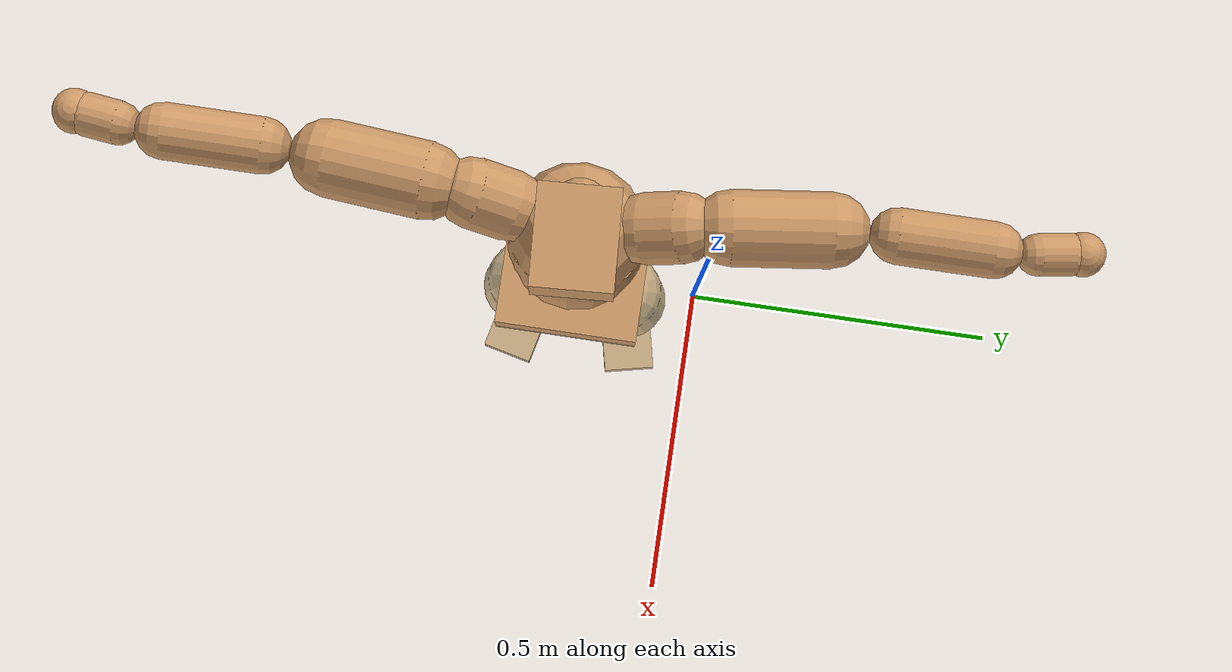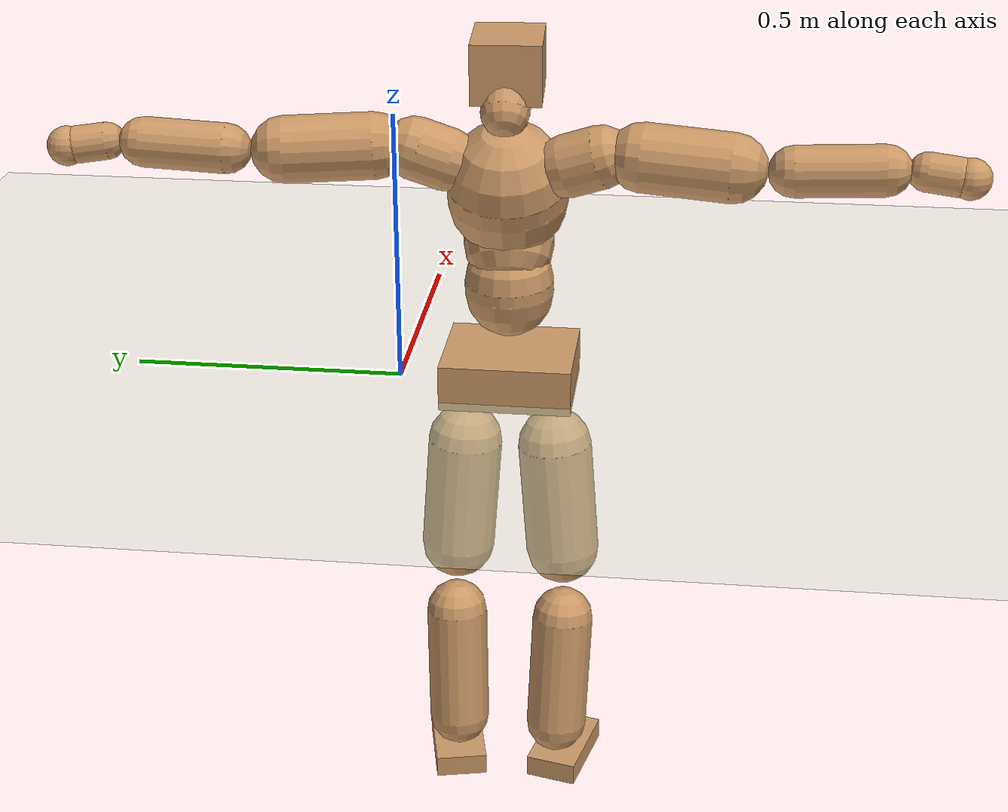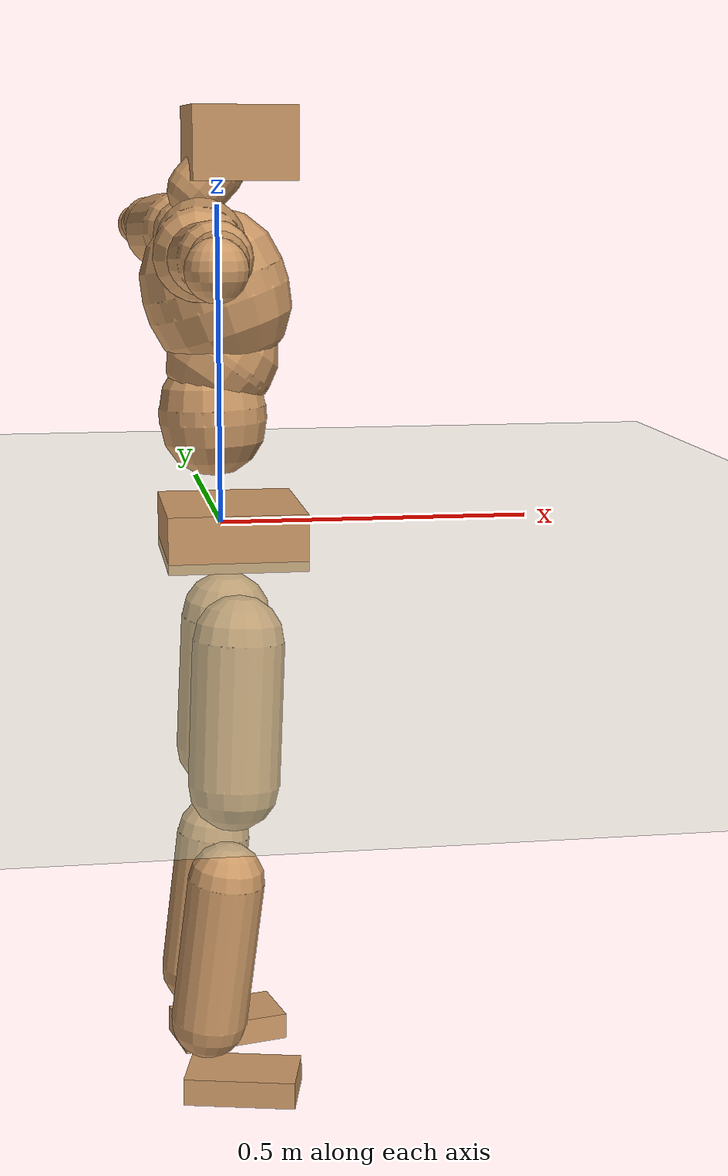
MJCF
<mujoco model="humanoid">
  <compiler coordinate="local" angle="radian"/>
  <default>
    <joint damping="0.0" armature="0.01" stiffness="0.0" limited="true"/>
    <geom conaffinity="1" condim="3" contype="7" margin="0.001" rgba="0.8 0.6 .4 1"/>
  </default>
  <asset>
    <texture type="skybox" builtin="gradient" rgb1=".4 .5 .6" rgb2="0 0 0" width="100" height="100"/>
    <texture builtin="flat" height="1278" mark="cross" markrgb="1 1 1" name="texgeom" random="0.01" rgb1="0.8 0.6 0.4" rgb2="0.8 0.6 0.4" type="cube" width="127"/>
    <texture builtin="checker" height="100" name="texplane" rgb1="0 0 0" rgb2="0.8 0.8 0.8" type="2d" width="100"/>
    <material name="MatPlane" reflectance="0.5" shininess="1" specular="1" texrepeat="60 60" texture="texplane"/>
    <material name="geom" texture="texgeom" texuniform="true"/>
  </asset>
  <worldbody>
    <light cutoff="100" diffuse="1 1 1" dir="-0 0 -1.3" directional="true" exponent="1" pos="0 0 1.3" specular=".1 .1 .1"/>
    <geom conaffinity="1" condim="3" name="floor" pos="0 0 0" rgba="0.8 0.9 0.8 1" size="100 100 .2" type="plane" material="MatPlane"/>
    <body name="Pelvis" pos="0.0008 -0.2057 0.038">
      <freejoint name="Pelvis"/>
      <geom type="box" contype="1" conaffinity="1" density="500" pos="-0.0057 0.0000 -0.0131" size="0.1025 0.12 0.0421" quat="1.0000 0.0000 0.0000 -0.0023" name="Pelvis"/>
      <body name="L_Hip" pos="-0.0038 0.0802 -0.092">
        <joint name="L_Hip_x" type="hinge" pos="0 0 0" axis="1 0 0" stiffness="800" damping="80" armature="0.02" range="-180.0000 180.0000"/>
        <joint name="L_Hip_y" type="hinge" pos="0 0 0" axis="0 1 0" stiffness="800" damping="80" armature="0.02" range="-180.0000 180.0000"/>
        <joint name="L_Hip_z" type="hinge" pos="0 0 0" axis="0 0 1" stiffness="800" damping="80" armature="0.02" range="-180.0000 180.0000"/>
        <geom type="capsule" contype="1" conaffinity="1" density="500" fromto="-0.0033 0.0048 -0.0717 -0.0134 0.0193 -0.2868" size="0.0694" name="L_Hip"/>
        <body name="L_Knee" pos="-0.0167 0.0241 -0.3585">
          <joint name="L_Knee_x" type="hinge" pos="0 0 0" axis="1 0 0" stiffness="800" damping="80" armature="0.02" range="-180.0000 180.0000"/>
          <joint name="L_Knee_y" type="hinge" pos="0 0 0" axis="0 1 0" stiffness="800" damping="80" armature="0.02" range="-180.0000 180.0000"/>
          <joint name="L_Knee_z" type="hinge" pos="0 0 0" axis="0 0 1" stiffness="800" damping="80" armature="0.02" range="-180.0000 180.0000"/>
          <geom type="capsule" contype="1" conaffinity="1" density="500" fromto="-0.0097 -0.0021 -0.0759 -0.0388 -0.0086 -0.3034" size="0.0582" name="L_Knee"/>
          <body name="L_Ankle" pos="-0.0485 -0.0107 -0.3793">
            <joint name="L_Ankle_x" type="hinge" pos="0 0 0" axis="1 0 0" stiffness="800" damping="80" armature="0.02" range="-180.0000 180.0000"/>
            <joint name="L_Ankle_y" type="hinge" pos="0 0 0" axis="0 1 0" stiffness="800" damping="80" armature="0.02" range="-180.0000 180.0000"/>
            <joint name="L_Ankle_z" type="hinge" pos="0 0 0" axis="0 0 1" stiffness="800" damping="80" armature="0.02" range="-180.0000 180.0000"/>
            <geom type="box" contype="1" conaffinity="1" density="500" pos="0.0577 0.0126 -0.0273" size="0.0853 0.0494 0.021" quat="0.9942 0.0000 0.0000 0.1077" name="L_Ankle"/>
            <body name="L_Toe" pos="0.1154 0.0253 -0.0547">
              <joint name="L_Toe_x" type="hinge" pos="0 0 0" axis="1 0 0" stiffness="500" damping="50" armature="0.02" range="-180.0000 180.0000"/>
              <joint name="L_Toe_y" type="hinge" pos="0 0 0" axis="0 1 0" stiffness="500" damping="50" armature="0.02" range="-180.0000 180.0000"/>
              <joint name="L_Toe_z" type="hinge" pos="0 0 0" axis="0 0 1" stiffness="500" damping="50" armature="0.02" range="-180.0000 180.0000"/>
              <geom type="box" contype="1" conaffinity="1" density="500" pos="0.0000 0.0000 0.0268" size="0.001 0.0025 0.001" quat="0.9935 0.0000 0.0000 0.1140" name="L_Toe"/>
            </body>
          </body>
        </body>
      </body>
      <body name="R_Hip" pos="-0.0011 -0.0779 -0.092">
        <joint name="R_Hip_x" type="hinge" pos="0 0 0" axis="1 0 0" stiffness="800" damping="80" armature="0.02" range="-180.0000 180.0000"/>
        <joint name="R_Hip_y" type="hinge" pos="0 0 0" axis="0 1 0" stiffness="800" damping="80" armature="0.02" range="-180.0000 180.0000"/>
        <joint name="R_Hip_z" type="hinge" pos="0 0 0" axis="0 0 1" stiffness="800" damping="80" armature="0.02" range="-180.0000 180.0000"/>
        <geom type="capsule" contype="1" conaffinity="1" density="500" fromto="-0.0038 -0.0060 -0.0723 -0.0151 -0.0242 -0.2893" size="0.0687" name="R_Hip"/>
        <body name="R_Knee" pos="-0.0189 -0.0302 -0.3616">
          <joint name="R_Knee_x" type="hinge" pos="0 0 0" axis="1 0 0" stiffness="800" damping="80" armature="0.02" range="-180.0000 180.0000"/>
          <joint name="R_Knee_y" type="hinge" pos="0 0 0" axis="0 1 0" stiffness="800" damping="80" armature="0.02" range="-180.0000 180.0000"/>
          <joint name="R_Knee_z" type="hinge" pos="0 0 0" axis="0 0 1" stiffness="800" damping="80" armature="0.02" range="-180.0000 180.0000"/>
          <geom type="capsule" contype="1" conaffinity="1" density="500" fromto="-0.0096 0.0025 -0.0760 -0.0383 0.0101 -0.3040" size="0.0581" name="R_Knee"/>
          <body name="R_Ankle" pos="-0.0479 0.0126 -0.38">
            <joint name="R_Ankle_x" type="hinge" pos="0 0 0" axis="1 0 0" stiffness="800" damping="80" armature="0.02" range="-180.0000 180.0000"/>
            <joint name="R_Ankle_y" type="hinge" pos="0 0 0" axis="0 1 0" stiffness="800" damping="80" armature="0.02" range="-180.0000 180.0000"/>
            <joint name="R_Ankle_z" type="hinge" pos="0 0 0" axis="0 0 1" stiffness="800" damping="80" armature="0.02" range="-180.0000 180.0000"/>
            <geom type="box" contype="1" conaffinity="1" density="500" pos="0.0599 -0.0143 -0.0233" size="0.0853 0.0491 0.0211" quat="0.9932 0.0000 0.0000 -0.1166" name="R_Ankle"/>
            <body name="R_Toe" pos="0.1198 -0.0285 -0.0466">
              <joint name="R_Toe_x" type="hinge" pos="0 0 0" axis="1 0 0" stiffness="500" damping="50" armature="0.02" range="-180.0000 180.0000"/>
              <joint name="R_Toe_y" type="hinge" pos="0 0 0" axis="0 1 0" stiffness="500" damping="50" armature="0.02" range="-180.0000 180.0000"/>
              <joint name="R_Toe_z" type="hinge" pos="0 0 0" axis="0 0 1" stiffness="500" damping="50" armature="0.02" range="-180.0000 180.0000"/>
              <geom type="box" contype="1" conaffinity="1" density="500" pos="0.0000 0.0000 0.0246" size="0.001 0.0025 0.0011" quat="0.9943 0.0000 0.0000 -0.1070" name="R_Toe"/>
            </body>
          </body>
        </body>
      </body>
      <body name="Torso" pos="-0.0293 -0.0021 0.1056">
        <joint name="Torso_x" type="hinge" pos="0 0 0" axis="1 0 0" stiffness="1000" damping="100" armature="0.02" range="-180.0000 180.0000"/>
        <joint name="Torso_y" type="hinge" pos="0 0 0" axis="0 1 0" stiffness="1000" damping="100" armature="0.02" range="-180.0000 180.0000"/>
        <joint name="Torso_z" type="hinge" pos="0 0 0" axis="0 0 1" stiffness="1000" damping="100" armature="0.02" range="-180.0000 180.0000"/>
        <geom type="capsule" contype="1" conaffinity="1" density="500" fromto="-0.0021 0.0012 0.0680 -0.0014 0.0008 0.0453" size="0.0799" name="Torso"/>
        <body name="Spine" pos="-0.0036 0.002 0.1134">
          <joint name="Spine_x" type="hinge" pos="0 0 0" axis="1 0 0" stiffness="1000" damping="100" armature="0.02" range="-180.0000 180.0000"/>
          <joint name="Spine_y" type="hinge" pos="0 0 0" axis="0 1 0" stiffness="1000" damping="100" armature="0.02" range="-180.0000 180.0000"/>
          <joint name="Spine_z" type="hinge" pos="0 0 0" axis="0 0 1" stiffness="1000" damping="100" armature="0.02" range="-180.0000 180.0000"/>
          <geom type="capsule" contype="1" conaffinity="1" density="500" fromto="0.0206 0.0015 0.0285 0.0138 0.0010 0.0190" size="0.0808" name="Spine"/>
          <body name="Chest" pos="0.0344 0.0025 0.0475">
            <joint name="Chest_x" type="hinge" pos="0 0 0" axis="1 0 0" stiffness="1000" damping="100" armature="0.02" range="-180.0000 180.0000"/>
            <joint name="Chest_y" type="hinge" pos="0 0 0" axis="0 1 0" stiffness="1000" damping="100" armature="0.02" range="-180.0000 180.0000"/>
            <joint name="Chest_z" type="hinge" pos="0 0 0" axis="0 0 1" stiffness="1000" damping="100" armature="0.02" range="-180.0000 180.0000"/>
            <geom type="capsule" contype="1" conaffinity="1" density="500" fromto="-0.0298 0.0002 0.0911 -0.0199 0.0002 0.0607" size="0.1076" name="Chest"/>
            <body name="Neck" pos="-0.0603 0.0019 0.2098">
              <joint name="Neck_x" type="hinge" pos="0 0 0" axis="1 0 0" stiffness="500" damping="50" armature="0.02" range="-180.0000 180.0000"/>
              <joint name="Neck_y" type="hinge" pos="0 0 0" axis="0 1 0" stiffness="500" damping="50" armature="0.02" range="-180.0000 180.0000"/>
              <joint name="Neck_z" type="hinge" pos="0 0 0" axis="0 0 1" stiffness="500" damping="50" armature="0.02" range="-180.0000 180.0000"/>
              <geom type="capsule" contype="1" conaffinity="1" density="500" fromto="0.0095 0.0001 0.0102 0.0380 0.0006 0.0407" size="0.0432" name="Neck"/>
              <body name="Head" pos="0.0475 0.0007 0.0508">
                <joint name="Head_x" type="hinge" pos="0 0 0" axis="1 0 0" stiffness="500" damping="50" armature="0.02" range="-180.0000 180.0000"/>
                <joint name="Head_y" type="hinge" pos="0 0 0" axis="0 1 0" stiffness="500" damping="50" armature="0.02" range="-180.0000 180.0000"/>
                <joint name="Head_z" type="hinge" pos="0 0 0" axis="0 0 1" stiffness="500" damping="50" armature="0.02" range="-180.0000 180.0000"/>
                <geom type="box" contype="1" conaffinity="1" density="500" pos="0.0248 0.0013 0.0264" size="0.0768 0.0619 0.0529" quat="0.9996 0.0000 0.0000 0.0272" name="Head"/>
              </body>
            </body>
            <body name="L_Thorax" pos="-0.0415 0.0846 0.1241">
              <joint name="L_Thorax_x" type="hinge" pos="0 0 0" axis="1 0 0" stiffness="500" damping="50" armature="0.02" range="-180.0000 180.0000"/>
              <joint name="L_Thorax_y" type="hinge" pos="0 0 0" axis="0 1 0" stiffness="500" damping="50" armature="0.02" range="-180.0000 180.0000"/>
              <joint name="L_Thorax_z" type="hinge" pos="0 0 0" axis="0 0 1" stiffness="500" damping="50" armature="0.02" range="-180.0000 180.0000"/>
              <geom type="capsule" contype="1" conaffinity="1" density="500" fromto="-0.0023 0.0186 0.0069 -0.0094 0.0742 0.0277" size="0.0557" name="L_Thorax"/>
              <body name="L_Shoulder" pos="-0.0117 0.0928 0.0346">
                <joint name="L_Shoulder_x" type="hinge" pos="0 0 0" axis="1 0 0" stiffness="500" damping="50" armature="0.02" range="-720.0000 720.0000"/>
                <joint name="L_Shoulder_y" type="hinge" pos="0 0 0" axis="0 1 0" stiffness="500" damping="50" armature="0.02" range="-720.0000 720.0000"/>
                <joint name="L_Shoulder_z" type="hinge" pos="0 0 0" axis="0 0 1" stiffness="500" damping="50" armature="0.02" range="-720.0000 720.0000"/>
                <geom type="capsule" contype="1" conaffinity="1" density="500" fromto="-0.0064 0.0513 -0.0021 -0.0255 0.2051 -0.0083" size="0.0588" name="L_Shoulder"/>
                <body name="L_Elbow" pos="-0.0319 0.2564 -0.0104">
                  <joint name="L_Elbow_x" type="hinge" pos="0 0 0" axis="1 0 0" stiffness="500" damping="50" armature="0.02" range="-720.0000 720.0000"/>
                  <joint name="L_Elbow_y" type="hinge" pos="0 0 0" axis="0 1 0" stiffness="500" damping="50" armature="0.02" range="-720.0000 720.0000"/>
                  <joint name="L_Elbow_z" type="hinge" pos="0 0 0" axis="0 0 1" stiffness="500" damping="50" armature="0.02" range="-720.0000 720.0000"/>
                  <geom type="capsule" contype="1" conaffinity="1" density="500" fromto="0.0005 0.0488 0.0021 0.0018 0.1953 0.0085" size="0.0439" name="L_Elbow"/>
                  <body name="L_Wrist" pos="0.0023 0.2441 0.0107">
                    <joint name="L_Wrist_x" type="hinge" pos="0 0 0" axis="1 0 0" stiffness="300" damping="30" armature="0.02" range="-180.0000 180.0000"/>
                    <joint name="L_Wrist_y" type="hinge" pos="0 0 0" axis="0 1 0" stiffness="300" damping="30" armature="0.02" range="-180.0000 180.0000"/>
                    <joint name="L_Wrist_z" type="hinge" pos="0 0 0" axis="0 0 1" stiffness="300" damping="30" armature="0.02" range="-180.0000 180.0000"/>
                    <geom type="capsule" contype="1" conaffinity="1" density="500" fromto="-0.0028 0.0171 -0.0020 -0.0112 0.0686 -0.0081" size="0.0328" name="L_Wrist"/>
                    <body name="L_Hand" pos="-0.014 0.0857 -0.0101">
                      <joint name="L_Hand_x" type="hinge" pos="0 0 0" axis="1 0 0" stiffness="300" damping="30" armature="0.02" range="-180.0000 180.0000"/>
                      <joint name="L_Hand_y" type="hinge" pos="0 0 0" axis="0 1 0" stiffness="300" damping="30" armature="0.02" range="-180.0000 180.0000"/>
                      <joint name="L_Hand_z" type="hinge" pos="0 0 0" axis="0 0 1" stiffness="300" damping="30" armature="0.02" range="-180.0000 180.0000"/>
                      <geom type="sphere" contype="1" conaffinity="1" density="500" size="0.0346" pos="0.0000 0.0000 0.0000" name="L_Hand"/>
                    </body>
                  </body>
                </body>
              </body>
            </body>
            <body name="R_Thorax" pos="-0.0471 -0.0853 0.1216">
              <joint name="R_Thorax_x" type="hinge" pos="0 0 0" axis="1 0 0" stiffness="500" damping="50" armature="0.02" range="-180.0000 180.0000"/>
              <joint name="R_Thorax_y" type="hinge" pos="0 0 0" axis="0 1 0" stiffness="500" damping="50" armature="0.02" range="-180.0000 180.0000"/>
              <joint name="R_Thorax_z" type="hinge" pos="0 0 0" axis="0 0 1" stiffness="500" damping="50" armature="0.02" range="-180.0000 180.0000"/>
              <geom type="capsule" contype="1" conaffinity="1" density="500" fromto="-0.0028 -0.0197 0.0071 -0.0111 -0.0788 0.0284" size="0.0553" name="R_Thorax"/>
              <body name="R_Shoulder" pos="-0.0139 -0.0985 0.0355">
                <joint name="R_Shoulder_x" type="hinge" pos="0 0 0" axis="1 0 0" stiffness="500" damping="50" armature="0.02" range="-720.0000 720.0000"/>
                <joint name="R_Shoulder_y" type="hinge" pos="0 0 0" axis="0 1 0" stiffness="500" damping="50" armature="0.02" range="-720.0000 720.0000"/>
                <joint name="R_Shoulder_z" type="hinge" pos="0 0 0" axis="0 0 1" stiffness="500" damping="50" armature="0.02" range="-720.0000 720.0000"/>
                <geom type="capsule" contype="1" conaffinity="1" density="500" fromto="-0.0048 -0.0512 -0.0028 -0.0193 -0.2048 -0.0111" size="0.0605" name="R_Shoulder"/>
                <body name="R_Elbow" pos="-0.0241 -0.256 -0.0139">
                  <joint name="R_Elbow_x" type="hinge" pos="0 0 0" axis="1 0 0" stiffness="500" damping="50" armature="0.02" range="-720.0000 720.0000"/>
                  <joint name="R_Elbow_y" type="hinge" pos="0 0 0" axis="0 1 0" stiffness="500" damping="50" armature="0.02" range="-720.0000 720.0000"/>
                  <joint name="R_Elbow_z" type="hinge" pos="0 0 0" axis="0 0 1" stiffness="500" damping="50" armature="0.02" range="-720.0000 720.0000"/>
                  <geom type="capsule" contype="1" conaffinity="1" density="500" fromto="0.0001 -0.0506 0.0024 0.0005 -0.2026 0.0097" size="0.0444" name="R_Elbow"/>
                  <body name="R_Wrist" pos="0.0006 -0.2532 0.0121">
                    <joint name="R_Wrist_x" type="hinge" pos="0 0 0" axis="1 0 0" stiffness="300" damping="30" armature="0.02" range="-180.0000 180.0000"/>
                    <joint name="R_Wrist_y" type="hinge" pos="0 0 0" axis="0 1 0" stiffness="300" damping="30" armature="0.02" range="-180.0000 180.0000"/>
                    <joint name="R_Wrist_z" type="hinge" pos="0 0 0" axis="0 0 1" stiffness="300" damping="30" armature="0.02" range="-180.0000 180.0000"/>
                    <geom type="capsule" contype="1" conaffinity="1" density="500" fromto="-0.0023 -0.0176 -0.0016 -0.0094 -0.0704 -0.0064" size="0.0341" name="R_Wrist"/>
                    <body name="R_Hand" pos="-0.0117 -0.0879 -0.008">
                      <joint name="R_Hand_x" type="hinge" pos="0 0 0" axis="1 0 0" stiffness="300" damping="30" armature="0.02" range="-180.0000 180.0000"/>
                      <joint name="R_Hand_y" type="hinge" pos="0 0 0" axis="0 1 0" stiffness="300" damping="30" armature="0.02" range="-180.0000 180.0000"/>
                      <joint name="R_Hand_z" type="hinge" pos="0 0 0" axis="0 0 1" stiffness="300" damping="30" armature="0.02" range="-180.0000 180.0000"/>
                      <geom type="sphere" contype="1" conaffinity="1" density="500" size="0.0354" pos="0.0000 0.0000 0.0000" name="R_Hand"/>
                    </body>
                  </body>
                </body>
              </body>
            </body>
          </body>
        </body>
      </body>
    </body>
  </worldbody>
  <actuator>
    <motor name="L_Hip_x" joint="L_Hip_x" gear="500"/>
    <motor name="L_Hip_y" joint="L_Hip_y" gear="500"/>
    <motor name="L_Hip_z" joint="L_Hip_z" gear="500"/>
    <motor name="L_Knee_x" joint="L_Knee_x" gear="500"/>
    <motor name="L_Knee_y" joint="L_Knee_y" gear="500"/>
    <motor name="L_Knee_z" joint="L_Knee_z" gear="500"/>
    <motor name="L_Ankle_x" joint="L_Ankle_x" gear="500"/>
    <motor name="L_Ankle_y" joint="L_Ankle_y" gear="500"/>
    <motor name="L_Ankle_z" joint="L_Ankle_z" gear="500"/>
    <motor name="L_Toe_x" joint="L_Toe_x" gear="500"/>
    <motor name="L_Toe_y" joint="L_Toe_y" gear="500"/>
    <motor name="L_Toe_z" joint="L_Toe_z" gear="500"/>
    <motor name="R_Hip_x" joint="R_Hip_x" gear="500"/>
    <motor name="R_Hip_y" joint="R_Hip_y" gear="500"/>
    <motor name="R_Hip_z" joint="R_Hip_z" gear="500"/>
    <motor name="R_Knee_x" joint="R_Knee_x" gear="500"/>
    <motor name="R_Knee_y" joint="R_Knee_y" gear="500"/>
    <motor name="R_Knee_z" joint="R_Knee_z" gear="500"/>
    <motor name="R_Ankle_x" joint="R_Ankle_x" gear="500"/>
    <motor name="R_Ankle_y" joint="R_Ankle_y" gear="500"/>
    <motor name="R_Ankle_z" joint="R_Ankle_z" gear="500"/>
    <motor name="R_Toe_x" joint="R_Toe_x" gear="500"/>
    <motor name="R_Toe_y" joint="R_Toe_y" gear="500"/>
    <motor name="R_Toe_z" joint="R_Toe_z" gear="500"/>
    <motor name="Torso_x" joint="Torso_x" gear="500"/>
    <motor name="Torso_y" joint="Torso_y" gear="500"/>
    <motor name="Torso_z" joint="Torso_z" gear="500"/>
    <motor name="Spine_x" joint="Spine_x" gear="500"/>
    <motor name="Spine_y" joint="Spine_y" gear="500"/>
    <motor name="Spine_z" joint="Spine_z" gear="500"/>
    <motor name="Chest_x" joint="Chest_x" gear="500"/>
    <motor name="Chest_y" joint="Chest_y" gear="500"/>
    <motor name="Chest_z" joint="Chest_z" gear="500"/>
    <motor name="Neck_x" joint="Neck_x" gear="500"/>
    <motor name="Neck_y" joint="Neck_y" gear="500"/>
    <motor name="Neck_z" joint="Neck_z" gear="500"/>
    <motor name="Head_x" joint="Head_x" gear="500"/>
    <motor name="Head_y" joint="Head_y" gear="500"/>
    <motor name="Head_z" joint="Head_z" gear="500"/>
    <motor name="L_Thorax_x" joint="L_Thorax_x" gear="500"/>
    <motor name="L_Thorax_y" joint="L_Thorax_y" gear="500"/>
    <motor name="L_Thorax_z" joint="L_Thorax_z" gear="500"/>
    <motor name="L_Shoulder_x" joint="L_Shoulder_x" gear="500"/>
    <motor name="L_Shoulder_y" joint="L_Shoulder_y" gear="500"/>
    <motor name="L_Shoulder_z" joint="L_Shoulder_z" gear="500"/>
    <motor name="L_Elbow_x" joint="L_Elbow_x" gear="500"/>
    <motor name="L_Elbow_y" joint="L_Elbow_y" gear="500"/>
    <motor name="L_Elbow_z" joint="L_Elbow_z" gear="500"/>
    <motor name="L_Wrist_x" joint="L_Wrist_x" gear="500"/>
    <motor name="L_Wrist_y" joint="L_Wrist_y" gear="500"/>
    <motor name="L_Wrist_z" joint="L_Wrist_z" gear="500"/>
    <motor name="L_Hand_x" joint="L_Hand_x" gear="500"/>
    <motor name="L_Hand_y" joint="L_Hand_y" gear="500"/>
    <motor name="L_Hand_z" joint="L_Hand_z" gear="500"/>
    <motor name="R_Thorax_x" joint="R_Thorax_x" gear="500"/>
    <motor name="R_Thorax_y" joint="R_Thorax_y" gear="500"/>
    <motor name="R_Thorax_z" joint="R_Thorax_z" gear="500"/>
    <motor name="R_Shoulder_x" joint="R_Shoulder_x" gear="500"/>
    <motor name="R_Shoulder_y" joint="R_Shoulder_y" gear="500"/>
    <motor name="R_Shoulder_z" joint="R_Shoulder_z" gear="500"/>
    <motor name="R_Elbow_x" joint="R_Elbow_x" gear="500"/>
    <motor name="R_Elbow_y" joint="R_Elbow_y" gear="500"/>
    <motor name="R_Elbow_z" joint="R_Elbow_z" gear="500"/>
    <motor name="R_Wrist_x" joint="R_Wrist_x" gear="500"/>
    <motor name="R_Wrist_y" joint="R_Wrist_y" gear="500"/>
    <motor name="R_Wrist_z" joint="R_Wrist_z" gear="500"/>
    <motor name="R_Hand_x" joint="R_Hand_x" gear="500"/>
    <motor name="R_Hand_y" joint="R_Hand_y" gear="500"/>
    <motor name="R_Hand_z" joint="R_Hand_z" gear="500"/>
  </actuator>
  <contact>
    <exclude body1="Torso" body2="Chest"/>
    <exclude body1="Head" body2="Chest"/>
    <exclude body1="R_Knee" body2="R_Toe"/>
    <exclude body1="R_Knee" body2="L_Ankle"/>
    <exclude body1="R_Knee" body2="L_Toe"/>
    <exclude body1="L_Knee" body2="L_Toe"/>
    <exclude body1="L_Knee" body2="R_Ankle"/>
    <exclude body1="L_Knee" body2="R_Toe"/>
    <exclude body1="L_Shoulder" body2="Chest"/>
    <exclude body1="R_Shoulder" body2="Chest"/>
  </contact>
  <sensor/>
  <size njmax="700" nconmax="700"/>
</mujoco>
